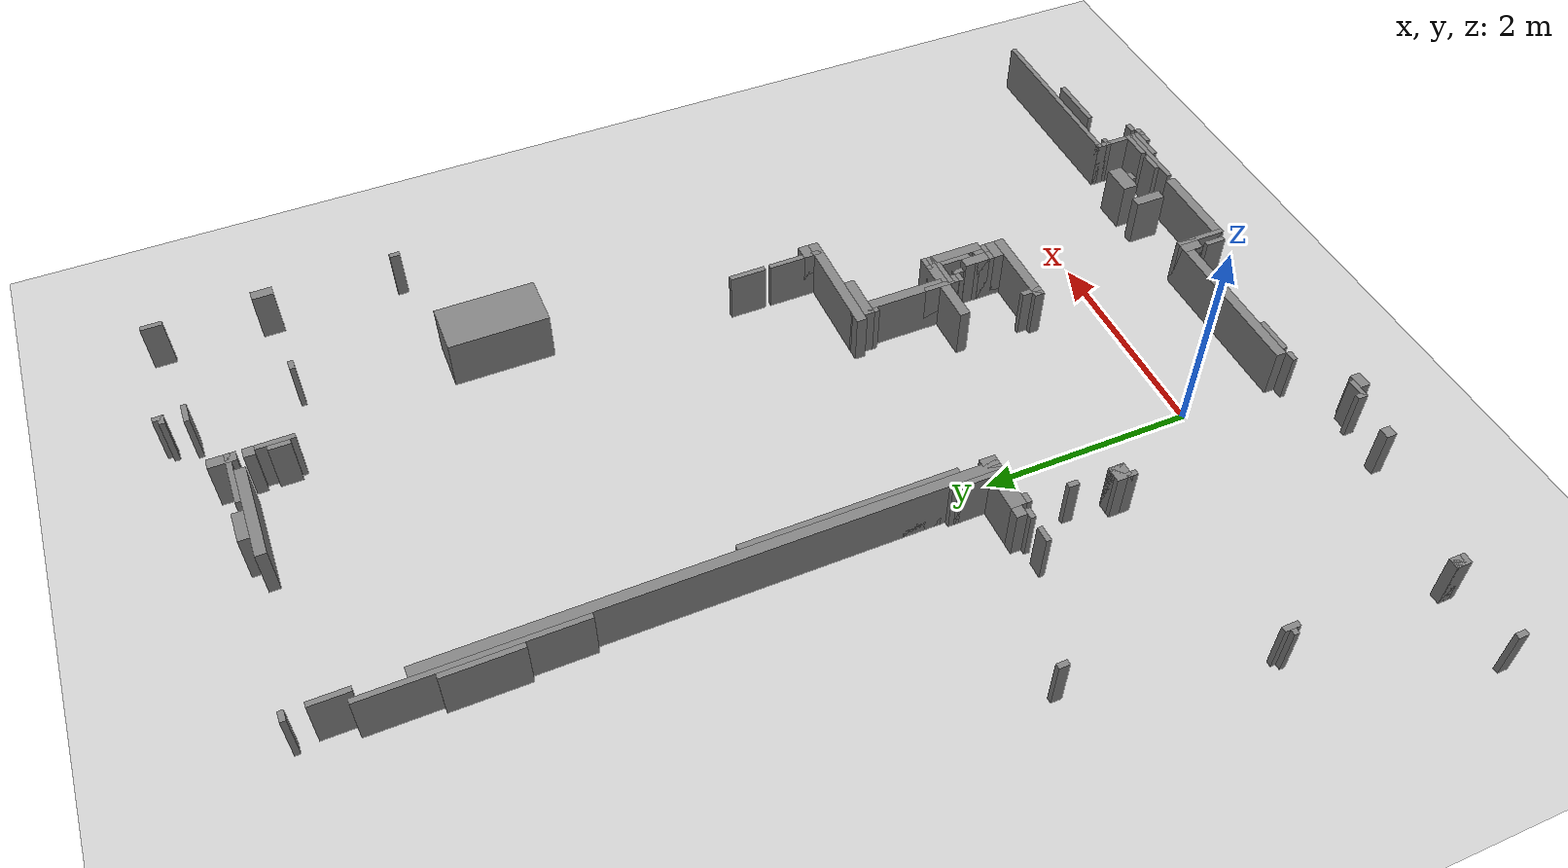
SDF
<sdf version="1.6">
 <world name="2F_world">
  <include><uri>model://ground_plane</uri></include>
  <include><uri>model://sun</uri></include>
  <model name="wall_0">
   <static>true</static>
   <pose>3.1 8.385 0.25 0 0 0</pose>
   <link name="link">
    <collision name="collision"><geometry><box><size>0.1 0.05 0.5</size></box></geometry></collision>
    <visual name="visual">
     <geometry><box><size>0.1 0.05 0.5</size></box></geometry>
     <material><ambient>0.5 0.5 0.5 1</ambient></material>
    </visual>
   </link>
  </model>
  <model name="wall_6">
   <static>true</static>
   <pose>3.1 8.185 0.25 0 0 0</pose>
   <link name="link">
    <collision name="collision"><geometry><box><size>0.2 0.05 0.5</size></box></geometry></collision>
    <visual name="visual">
     <geometry><box><size>0.2 0.05 0.5</size></box></geometry>
     <material><ambient>0.5 0.5 0.5 1</ambient></material>
    </visual>
   </link>
  </model>
  <model name="wall_7">
   <static>true</static>
   <pose>-0.15 7.985 0.25 0 0 0</pose>
   <link name="link">
    <collision name="collision"><geometry><box><size>0.1 0.05 0.5</size></box></geometry></collision>
    <visual name="visual">
     <geometry><box><size>0.1 0.05 0.5</size></box></geometry>
     <material><ambient>0.5 0.5 0.5 1</ambient></material>
    </visual>
   </link>
  </model>
  <model name="wall_9">
   <static>true</static>
   <pose>1.7 7.96 0.25 0 0 0</pose>
   <link name="link">
    <collision name="collision"><geometry><box><size>0.3 0.1 0.5</size></box></geometry></collision>
    <visual name="visual">
     <geometry><box><size>0.3 0.1 0.5</size></box></geometry>
     <material><ambient>0.5 0.5 0.5 1</ambient></material>
    </visual>
   </link>
  </model>
  <model name="wall_10">
   <static>true</static>
   <pose>2.225 7.935 0.25 0 0 0</pose>
   <link name="link">
    <collision name="collision"><geometry><box><size>0.55 0.05 0.5</size></box></geometry></collision>
    <visual name="visual">
     <geometry><box><size>0.55 0.05 0.5</size></box></geometry>
     <material><ambient>0.5 0.5 0.5 1</ambient></material>
    </visual>
   </link>
  </model>
  <model name="wall_12">
   <static>true</static>
   <pose>1.825 7.86 0.25 0 0 0</pose>
   <link name="link">
    <collision name="collision"><geometry><box><size>0.95 0.1 0.5</size></box></geometry></collision>
    <visual name="visual">
     <geometry><box><size>0.95 0.1 0.5</size></box></geometry>
     <material><ambient>0.5 0.5 0.5 1</ambient></material>
    </visual>
   </link>
  </model>
  <model name="wall_15">
   <static>true</static>
   <pose>2.45 7.76 0.25 0 0 0</pose>
   <link name="link">
    <collision name="collision"><geometry><box><size>0.1 0.1 0.5</size></box></geometry></collision>
    <visual name="visual">
     <geometry><box><size>0.1 0.1 0.5</size></box></geometry>
     <material><ambient>0.5 0.5 0.5 1</ambient></material>
    </visual>
   </link>
  </model>
  <model name="wall_26">
   <static>true</static>
   <pose>3.3 7.235 0.25 0 0 0</pose>
   <link name="link">
    <collision name="collision"><geometry><box><size>0.1 0.05 0.5</size></box></geometry></collision>
    <visual name="visual">
     <geometry><box><size>0.1 0.05 0.5</size></box></geometry>
     <material><ambient>0.5 0.5 0.5 1</ambient></material>
    </visual>
   </link>
  </model>
  <model name="wall_46">
   <static>true</static>
   <pose>2.825 2.46 0.25 0 0 0</pose>
   <link name="link">
    <collision name="collision"><geometry><box><size>0.15 0.1 0.5</size></box></geometry></collision>
    <visual name="visual">
     <geometry><box><size>0.15 0.1 0.5</size></box></geometry>
     <material><ambient>0.5 0.5 0.5 1</ambient></material>
    </visual>
   </link>
  </model>
  <model name="wall_48">
   <static>true</static>
   <pose>2.35 2.36 0.25 0 0 0</pose>
   <link name="link">
    <collision name="collision"><geometry><box><size>1.1 0.1 0.5</size></box></geometry></collision>
    <visual name="visual">
     <geometry><box><size>1.1 0.1 0.5</size></box></geometry>
     <material><ambient>0.5 0.5 0.5 1</ambient></material>
    </visual>
   </link>
  </model>
  <model name="wall_49">
   <static>true</static>
   <pose>2.075 2.26 0.25 0 0 0</pose>
   <link name="link">
    <collision name="collision"><geometry><box><size>0.45 0.1 0.5</size></box></geometry></collision>
    <visual name="visual">
     <geometry><box><size>0.45 0.1 0.5</size></box></geometry>
     <material><ambient>0.5 0.5 0.5 1</ambient></material>
    </visual>
   </link>
  </model>
  <model name="wall_50">
   <static>true</static>
   <pose>-0.65 2.11 0.25 0 0 0</pose>
   <link name="link">
    <collision name="collision"><geometry><box><size>0.1 0.1 0.5</size></box></geometry></collision>
    <visual name="visual">
     <geometry><box><size>0.1 0.1 0.5</size></box></geometry>
     <material><ambient>0.5 0.5 0.5 1</ambient></material>
    </visual>
   </link>
  </model>
  <model name="wall_51">
   <static>true</static>
   <pose>-0.925 2.035 0.25 0 0 0</pose>
   <link name="link">
    <collision name="collision"><geometry><box><size>0.15 0.05 0.5</size></box></geometry></collision>
    <visual name="visual">
     <geometry><box><size>0.15 0.05 0.5</size></box></geometry>
     <material><ambient>0.5 0.5 0.5 1</ambient></material>
    </visual>
   </link>
  </model>
  <model name="wall_52">
   <static>true</static>
   <pose>-0.7 2.035 0.25 0 0 0</pose>
   <link name="link">
    <collision name="collision"><geometry><box><size>0.1 0.05 0.5</size></box></geometry></collision>
    <visual name="visual">
     <geometry><box><size>0.1 0.05 0.5</size></box></geometry>
     <material><ambient>0.5 0.5 0.5 1</ambient></material>
    </visual>
   </link>
  </model>
  <model name="wall_53">
   <static>true</static>
   <pose>-0.325 2.085 0.25 0 0 0</pose>
   <link name="link">
    <collision name="collision"><geometry><box><size>0.55 0.15 0.5</size></box></geometry></collision>
    <visual name="visual">
     <geometry><box><size>0.55 0.15 0.5</size></box></geometry>
     <material><ambient>0.5 0.5 0.5 1</ambient></material>
    </visual>
   </link>
  </model>
  <model name="wall_54">
   <static>true</static>
   <pose>-0.55 1.985 0.25 0 0 0</pose>
   <link name="link">
    <collision name="collision"><geometry><box><size>0.1 0.05 0.5</size></box></geometry></collision>
    <visual name="visual">
     <geometry><box><size>0.1 0.05 0.5</size></box></geometry>
     <material><ambient>0.5 0.5 0.5 1</ambient></material>
    </visual>
   </link>
  </model>
  <model name="wall_55">
   <static>true</static>
   <pose>1.9 1.46 0.25 0 0 0</pose>
   <link name="link">
    <collision name="collision"><geometry><box><size>0.8 0.1 0.5</size></box></geometry></collision>
    <visual name="visual">
     <geometry><box><size>0.8 0.1 0.5</size></box></geometry>
     <material><ambient>0.5 0.5 0.5 1</ambient></material>
    </visual>
   </link>
  </model>
  <model name="wall_56">
   <static>true</static>
   <pose>2.1 1.385 0.25 0 0 0</pose>
   <link name="link">
    <collision name="collision"><geometry><box><size>0.4 0.05 0.5</size></box></geometry></collision>
    <visual name="visual">
     <geometry><box><size>0.4 0.05 0.5</size></box></geometry>
     <material><ambient>0.5 0.5 0.5 1</ambient></material>
    </visual>
   </link>
  </model>
  <model name="wall_57">
   <static>true</static>
   <pose>1.95 1.335 0.25 0 0 0</pose>
   <link name="link">
    <collision name="collision"><geometry><box><size>0.1 0.05 0.5</size></box></geometry></collision>
    <visual name="visual">
     <geometry><box><size>0.1 0.05 0.5</size></box></geometry>
     <material><ambient>0.5 0.5 0.5 1</ambient></material>
    </visual>
   </link>
  </model>
  <model name="wall_58">
   <static>true</static>
   <pose>2.0 1.285 0.25 0 0 0</pose>
   <link name="link">
    <collision name="collision"><geometry><box><size>0.1 0.05 0.5</size></box></geometry></collision>
    <visual name="visual">
     <geometry><box><size>0.1 0.05 0.5</size></box></geometry>
     <material><ambient>0.5 0.5 0.5 1</ambient></material>
    </visual>
   </link>
  </model>
  <model name="wall_60">
   <static>true</static>
   <pose>-0.625 1.135 0.25 0 0 0</pose>
   <link name="link">
    <collision name="collision"><geometry><box><size>0.15 0.15 0.5</size></box></geometry></collision>
    <visual name="visual">
     <geometry><box><size>0.15 0.15 0.5</size></box></geometry>
     <material><ambient>0.5 0.5 0.5 1</ambient></material>
    </visual>
   </link>
  </model>
  <model name="wall_61">
   <static>true</static>
   <pose>2.1 1.035 0.25 0 0 0</pose>
   <link name="link">
    <collision name="collision"><geometry><box><size>0.1 0.05 0.5</size></box></geometry></collision>
    <visual name="visual">
     <geometry><box><size>0.1 0.05 0.5</size></box></geometry>
     <material><ambient>0.5 0.5 0.5 1</ambient></material>
    </visual>
   </link>
  </model>
  <model name="wall_62">
   <static>true</static>
   <pose>2.25 1.035 0.25 0 0 0</pose>
   <link name="link">
    <collision name="collision"><geometry><box><size>0.1 0.05 0.5</size></box></geometry></collision>
    <visual name="visual">
     <geometry><box><size>0.1 0.05 0.5</size></box></geometry>
     <material><ambient>0.5 0.5 0.5 1</ambient></material>
    </visual>
   </link>
  </model>
  <model name="wall_63">
   <static>true</static>
   <pose>2.175 0.96 0.25 0 0 0</pose>
   <link name="link">
    <collision name="collision"><geometry><box><size>0.25 0.1 0.5</size></box></geometry></collision>
    <visual name="visual">
     <geometry><box><size>0.25 0.1 0.5</size></box></geometry>
     <material><ambient>0.5 0.5 0.5 1</ambient></material>
    </visual>
   </link>
  </model>
  <model name="wall_64">
   <static>true</static>
   <pose>2.2 0.885 0.25 0 0 0</pose>
   <link name="link">
    <collision name="collision"><geometry><box><size>0.1 0.05 0.5</size></box></geometry></collision>
    <visual name="visual">
     <geometry><box><size>0.1 0.05 0.5</size></box></geometry>
     <material><ambient>0.5 0.5 0.5 1</ambient></material>
    </visual>
   </link>
  </model>
  <model name="wall_65">
   <static>true</static>
   <pose>2.15 0.81 0.25 0 0 0</pose>
   <link name="link">
    <collision name="collision"><geometry><box><size>0.2 0.1 0.5</size></box></geometry></collision>
    <visual name="visual">
     <geometry><box><size>0.2 0.1 0.5</size></box></geometry>
     <material><ambient>0.5 0.5 0.5 1</ambient></material>
    </visual>
   </link>
  </model>
  <model name="wall_66">
   <static>true</static>
   <pose>-2.45 0.735 0.25 0 0 0</pose>
   <link name="link">
    <collision name="collision"><geometry><box><size>0.1 0.05 0.5</size></box></geometry></collision>
    <visual name="visual">
     <geometry><box><size>0.1 0.05 0.5</size></box></geometry>
     <material><ambient>0.5 0.5 0.5 1</ambient></material>
    </visual>
   </link>
  </model>
  <model name="wall_67">
   <static>true</static>
   <pose>1.85 0.71 0.25 0 0 0</pose>
   <link name="link">
    <collision name="collision"><geometry><box><size>0.8 0.1 0.5</size></box></geometry></collision>
    <visual name="visual">
     <geometry><box><size>0.8 0.1 0.5</size></box></geometry>
     <material><ambient>0.5 0.5 0.5 1</ambient></material>
    </visual>
   </link>
  </model>
  <model name="wall_71">
   <static>true</static>
   <pose>-2.45 -0.84 0.25 0 0 0</pose>
   <link name="link">
    <collision name="collision"><geometry><box><size>0.1 0.1 0.5</size></box></geometry></collision>
    <visual name="visual">
     <geometry><box><size>0.1 0.1 0.5</size></box></geometry>
     <material><ambient>0.5 0.5 0.5 1</ambient></material>
    </visual>
   </link>
  </model>
  <model name="wall_72">
   <static>true</static>
   <pose>0.75 -0.89 0.25 0 0 0</pose>
   <link name="link">
    <collision name="collision"><geometry><box><size>1.6 0.1 0.5</size></box></geometry></collision>
    <visual name="visual">
     <geometry><box><size>1.6 0.1 0.5</size></box></geometry>
     <material><ambient>0.5 0.5 0.5 1</ambient></material>
    </visual>
   </link>
  </model>
  <model name="wall_73">
   <static>true</static>
   <pose>2.55 -0.865 0.25 0 0 0</pose>
   <link name="link">
    <collision name="collision"><geometry><box><size>0.3 0.15 0.5</size></box></geometry></collision>
    <visual name="visual">
     <geometry><box><size>0.3 0.15 0.5</size></box></geometry>
     <material><ambient>0.5 0.5 0.5 1</ambient></material>
    </visual>
   </link>
  </model>
  <model name="wall_74">
   <static>true</static>
   <pose>3.95 -0.915 0.25 0 0 0</pose>
   <link name="link">
    <collision name="collision"><geometry><box><size>1.8 0.05 0.5</size></box></geometry></collision>
    <visual name="visual">
     <geometry><box><size>1.8 0.05 0.5</size></box></geometry>
     <material><ambient>0.5 0.5 0.5 1</ambient></material>
    </visual>
   </link>
  </model>
  <model name="wall_76">
   <static>true</static>
   <pose>-0.1 -0.965 0.25 0 0 0</pose>
   <link name="link">
    <collision name="collision"><geometry><box><size>0.1 0.05 0.5</size></box></geometry></collision>
    <visual name="visual">
     <geometry><box><size>0.1 0.05 0.5</size></box></geometry>
     <material><ambient>0.5 0.5 0.5 1</ambient></material>
    </visual>
   </link>
  </model>
  <model name="wall_77">
   <static>true</static>
   <pose>0.175 -0.965 0.25 0 0 0</pose>
   <link name="link">
    <collision name="collision"><geometry><box><size>0.35 0.05 0.5</size></box></geometry></collision>
    <visual name="visual">
     <geometry><box><size>0.35 0.05 0.5</size></box></geometry>
     <material><ambient>0.5 0.5 0.5 1</ambient></material>
    </visual>
   </link>
  </model>
  <model name="wall_78">
   <static>true</static>
   <pose>2.55 -0.965 0.25 0 0 0</pose>
   <link name="link">
    <collision name="collision"><geometry><box><size>0.1 0.05 0.5</size></box></geometry></collision>
    <visual name="visual">
     <geometry><box><size>0.1 0.05 0.5</size></box></geometry>
     <material><ambient>0.5 0.5 0.5 1</ambient></material>
    </visual>
   </link>
  </model>
  <model name="wall_79">
   <static>true</static>
   <pose>1.475 -0.99 0.25 0 0 0</pose>
   <link name="link">
    <collision name="collision"><geometry><box><size>0.15 0.1 0.5</size></box></geometry></collision>
    <visual name="visual">
     <geometry><box><size>0.15 0.1 0.5</size></box></geometry>
     <material><ambient>0.5 0.5 0.5 1</ambient></material>
    </visual>
   </link>
  </model>
  <model name="wall_80">
   <static>true</static>
   <pose>3.1 -1.015 0.25 0 0 0</pose>
   <link name="link">
    <collision name="collision"><geometry><box><size>0.1 0.05 0.5</size></box></geometry></collision>
    <visual name="visual">
     <geometry><box><size>0.1 0.05 0.5</size></box></geometry>
     <material><ambient>0.5 0.5 0.5 1</ambient></material>
    </visual>
   </link>
  </model>
  <model name="wall_82">
   <static>true</static>
   <pose>3.775 -1.065 0.25 0 0 0</pose>
   <link name="link">
    <collision name="collision"><geometry><box><size>0.55 0.05 0.5</size></box></geometry></collision>
    <visual name="visual">
     <geometry><box><size>0.55 0.05 0.5</size></box></geometry>
     <material><ambient>0.5 0.5 0.5 1</ambient></material>
    </visual>
   </link>
  </model>
  <model name="wall_89">
   <static>true</static>
   <pose>-1.15 -1.19 0.25 0 0 0</pose>
   <link name="link">
    <collision name="collision"><geometry><box><size>0.1 0.1 0.5</size></box></geometry></collision>
    <visual name="visual">
     <geometry><box><size>0.1 0.1 0.5</size></box></geometry>
     <material><ambient>0.5 0.5 0.5 1</ambient></material>
    </visual>
   </link>
  </model>
  <model name="wall_90">
   <static>true</static>
   <pose>-0.65 -1.265 0.25 0 0 0</pose>
   <link name="link">
    <collision name="collision"><geometry><box><size>0.2 0.05 0.5</size></box></geometry></collision>
    <visual name="visual">
     <geometry><box><size>0.2 0.05 0.5</size></box></geometry>
     <material><ambient>0.5 0.5 0.5 1</ambient></material>
    </visual>
   </link>
  </model>
  <model name="wall_91">
   <static>true</static>
   <pose>2.65 -1.265 0.25 0 0 0</pose>
   <link name="link">
    <collision name="collision"><geometry><box><size>0.2 0.05 0.5</size></box></geometry></collision>
    <visual name="visual">
     <geometry><box><size>0.2 0.05 0.5</size></box></geometry>
     <material><ambient>0.5 0.5 0.5 1</ambient></material>
    </visual>
   </link>
  </model>
  <model name="wall_92">
   <static>true</static>
   <pose>2.95 -1.265 0.25 0 0 0</pose>
   <link name="link">
    <collision name="collision"><geometry><box><size>0.3 0.05 0.5</size></box></geometry></collision>
    <visual name="visual">
     <geometry><box><size>0.3 0.05 0.5</size></box></geometry>
     <material><ambient>0.5 0.5 0.5 1</ambient></material>
    </visual>
   </link>
  </model>
  <model name="wall_94">
   <static>true</static>
   <pose>1.925 -1.29 0.25 0 0 0</pose>
   <link name="link">
    <collision name="collision"><geometry><box><size>0.85 0.1 0.5</size></box></geometry></collision>
    <visual name="visual">
     <geometry><box><size>0.85 0.1 0.5</size></box></geometry>
     <material><ambient>0.5 0.5 0.5 1</ambient></material>
    </visual>
   </link>
  </model>
  <model name="wall_95">
   <static>true</static>
   <pose>2.75 -1.315 0.25 0 0 0</pose>
   <link name="link">
    <collision name="collision"><geometry><box><size>0.7 0.05 0.5</size></box></geometry></collision>
    <visual name="visual">
     <geometry><box><size>0.7 0.05 0.5</size></box></geometry>
     <material><ambient>0.5 0.5 0.5 1</ambient></material>
    </visual>
   </link>
  </model>
  <model name="wall_96">
   <static>true</static>
   <pose>-0.575 -1.34 0.25 0 0 0</pose>
   <link name="link">
    <collision name="collision"><geometry><box><size>0.15 0.1 0.5</size></box></geometry></collision>
    <visual name="visual">
     <geometry><box><size>0.15 0.1 0.5</size></box></geometry>
     <material><ambient>0.5 0.5 0.5 1</ambient></material>
    </visual>
   </link>
  </model>
  <model name="wall_97">
   <static>true</static>
   <pose>2.925 -1.365 0.25 0 0 0</pose>
   <link name="link">
    <collision name="collision"><geometry><box><size>0.35 0.05 0.5</size></box></geometry></collision>
    <visual name="visual">
     <geometry><box><size>0.35 0.05 0.5</size></box></geometry>
     <material><ambient>0.5 0.5 0.5 1</ambient></material>
    </visual>
   </link>
  </model>
  <model name="wall_98">
   <static>true</static>
   <pose>3.2 -1.365 0.25 0 0 0</pose>
   <link name="link">
    <collision name="collision"><geometry><box><size>0.1 0.05 0.5</size></box></geometry></collision>
    <visual name="visual">
     <geometry><box><size>0.1 0.05 0.5</size></box></geometry>
     <material><ambient>0.5 0.5 0.5 1</ambient></material>
    </visual>
   </link>
  </model>
  <model name="wall_99">
   <static>true</static>
   <pose>3.05 -1.415 0.25 0 0 0</pose>
   <link name="link">
    <collision name="collision"><geometry><box><size>0.2 0.05 0.5</size></box></geometry></collision>
    <visual name="visual">
     <geometry><box><size>0.2 0.05 0.5</size></box></geometry>
     <material><ambient>0.5 0.5 0.5 1</ambient></material>
    </visual>
   </link>
  </model>
  <model name="wall_105">
   <static>true</static>
   <pose>-3.175 -0.84 0.25 0 0 0</pose>
   <link name="link">
    <collision name="collision"><geometry><box><size>0.05 0.1 0.5</size></box></geometry></collision>
    <visual name="visual">
     <geometry><box><size>0.05 0.1 0.5</size></box></geometry>
     <material><ambient>0.5 0.5 0.5 1</ambient></material>
    </visual>
   </link>
  </model>
  <model name="wall_106">
   <static>true</static>
   <pose>-2.425 0.735 0.25 0 0 0</pose>
   <link name="link">
    <collision name="collision"><geometry><box><size>0.05 0.15 0.5</size></box></geometry></collision>
    <visual name="visual">
     <geometry><box><size>0.05 0.15 0.5</size></box></geometry>
     <material><ambient>0.5 0.5 0.5 1</ambient></material>
    </visual>
   </link>
  </model>
  <model name="wall_107">
   <static>true</static>
   <pose>-2.45 -0.865 0.25 0 0 0</pose>
   <link name="link">
    <collision name="collision"><geometry><box><size>0.1 0.15 0.5</size></box></geometry></collision>
    <visual name="visual">
     <geometry><box><size>0.1 0.15 0.5</size></box></geometry>
     <material><ambient>0.5 0.5 0.5 1</ambient></material>
    </visual>
   </link>
  </model>
  <model name="wall_108">
   <static>true</static>
   <pose>-2.025 2.51 0.25 0 0 0</pose>
   <link name="link">
    <collision name="collision"><geometry><box><size>0.05 0.1 0.5</size></box></geometry></collision>
    <visual name="visual">
     <geometry><box><size>0.05 0.1 0.5</size></box></geometry>
     <material><ambient>0.5 0.5 0.5 1</ambient></material>
    </visual>
   </link>
  </model>
  <model name="wall_109">
   <static>true</static>
   <pose>-0.725 -1.24 0.25 0 0 0</pose>
   <link name="link">
    <collision name="collision"><geometry><box><size>0.05 0.1 0.5</size></box></geometry></collision>
    <visual name="visual">
     <geometry><box><size>0.05 0.1 0.5</size></box></geometry>
     <material><ambient>0.5 0.5 0.5 1</ambient></material>
    </visual>
   </link>
  </model>
  <model name="wall_110">
   <static>true</static>
   <pose>-0.675 1.06 0.25 0 0 0</pose>
   <link name="link">
    <collision name="collision"><geometry><box><size>0.05 0.1 0.5</size></box></geometry></collision>
    <visual name="visual">
     <geometry><box><size>0.05 0.1 0.5</size></box></geometry>
     <material><ambient>0.5 0.5 0.5 1</ambient></material>
    </visual>
   </link>
  </model>
  <model name="wall_111">
   <static>true</static>
   <pose>-0.575 1.56 0.25 0 0 0</pose>
   <link name="link">
    <collision name="collision"><geometry><box><size>0.05 0.1 0.5</size></box></geometry></collision>
    <visual name="visual">
     <geometry><box><size>0.05 0.1 0.5</size></box></geometry>
     <material><ambient>0.5 0.5 0.5 1</ambient></material>
    </visual>
   </link>
  </model>
  <model name="wall_112">
   <static>true</static>
   <pose>-0.6 1.135 0.25 0 0 0</pose>
   <link name="link">
    <collision name="collision"><geometry><box><size>0.1 0.15 0.5</size></box></geometry></collision>
    <visual name="visual">
     <geometry><box><size>0.1 0.15 0.5</size></box></geometry>
     <material><ambient>0.5 0.5 0.5 1</ambient></material>
    </visual>
   </link>
  </model>
  <model name="wall_113">
   <static>true</static>
   <pose>-0.275 6.51 0.25 0 0 0</pose>
   <link name="link">
    <collision name="collision"><geometry><box><size>0.05 0.7 0.5</size></box></geometry></collision>
    <visual name="visual">
     <geometry><box><size>0.05 0.7 0.5</size></box></geometry>
     <material><ambient>0.5 0.5 0.5 1</ambient></material>
    </visual>
   </link>
  </model>
  <model name="wall_114">
   <static>true</static>
   <pose>-0.225 6.56 0.25 0 0 0</pose>
   <link name="link">
    <collision name="collision"><geometry><box><size>0.05 1.9 0.5</size></box></geometry></collision>
    <visual name="visual">
     <geometry><box><size>0.05 1.9 0.5</size></box></geometry>
     <material><ambient>0.5 0.5 0.5 1</ambient></material>
    </visual>
   </link>
  </model>
  <model name="wall_115">
   <static>true</static>
   <pose>-0.225 2.46 0.25 0 0 0</pose>
   <link name="link">
    <collision name="collision"><geometry><box><size>0.05 0.1 0.5</size></box></geometry></collision>
    <visual name="visual">
     <geometry><box><size>0.05 0.1 0.5</size></box></geometry>
     <material><ambient>0.5 0.5 0.5 1</ambient></material>
    </visual>
   </link>
  </model>
  <model name="wall_116">
   <static>true</static>
   <pose>-0.175 2.81 0.25 0 0 0</pose>
   <link name="link">
    <collision name="collision"><geometry><box><size>0.05 0.2 0.5</size></box></geometry></collision>
    <visual name="visual">
     <geometry><box><size>0.05 0.2 0.5</size></box></geometry>
     <material><ambient>0.5 0.5 0.5 1</ambient></material>
    </visual>
   </link>
  </model>
  <model name="wall_117">
   <static>true</static>
   <pose>-0.175 2.61 0.25 0 0 0</pose>
   <link name="link">
    <collision name="collision"><geometry><box><size>0.05 0.1 0.5</size></box></geometry></collision>
    <visual name="visual">
     <geometry><box><size>0.05 0.1 0.5</size></box></geometry>
     <material><ambient>0.5 0.5 0.5 1</ambient></material>
    </visual>
   </link>
  </model>
  <model name="wall_118">
   <static>true</static>
   <pose>-0.2 2.235 0.25 0 0 0</pose>
   <link name="link">
    <collision name="collision"><geometry><box><size>0.1 0.45 0.5</size></box></geometry></collision>
    <visual name="visual">
     <geometry><box><size>0.1 0.45 0.5</size></box></geometry>
     <material><ambient>0.5 0.5 0.5 1</ambient></material>
    </visual>
   </link>
  </model>
  <model name="wall_119">
   <static>true</static>
   <pose>-0.125 7.635 0.25 0 0 0</pose>
   <link name="link">
    <collision name="collision"><geometry><box><size>0.05 0.35 0.5</size></box></geometry></collision>
    <visual name="visual">
     <geometry><box><size>0.05 0.35 0.5</size></box></geometry>
     <material><ambient>0.5 0.5 0.5 1</ambient></material>
    </visual>
   </link>
  </model>
  <model name="wall_120">
   <static>true</static>
   <pose>-0.15 4.535 0.25 0 0 0</pose>
   <link name="link">
    <collision name="collision"><geometry><box><size>0.1 5.05 0.5</size></box></geometry></collision>
    <visual name="visual">
     <geometry><box><size>0.1 5.05 0.5</size></box></geometry>
     <material><ambient>0.5 0.5 0.5 1</ambient></material>
    </visual>
   </link>
  </model>
  <model name="wall_121">
   <static>true</static>
   <pose>-0.075 3.36 0.25 0 0 0</pose>
   <link name="link">
    <collision name="collision"><geometry><box><size>0.05 2.0 0.5</size></box></geometry></collision>
    <visual name="visual">
     <geometry><box><size>0.05 2.0 0.5</size></box></geometry>
     <material><ambient>0.5 0.5 0.5 1</ambient></material>
    </visual>
   </link>
  </model>
  <model name="wall_122">
   <static>true</static>
   <pose>1.425 -1.19 0.25 0 0 0</pose>
   <link name="link">
    <collision name="collision"><geometry><box><size>0.05 0.2 0.5</size></box></geometry></collision>
    <visual name="visual">
     <geometry><box><size>0.05 0.2 0.5</size></box></geometry>
     <material><ambient>0.5 0.5 0.5 1</ambient></material>
    </visual>
   </link>
  </model>
  <model name="wall_123">
   <static>true</static>
   <pose>1.475 0.71 0.25 0 0 0</pose>
   <link name="link">
    <collision name="collision"><geometry><box><size>0.05 0.1 0.5</size></box></geometry></collision>
    <visual name="visual">
     <geometry><box><size>0.05 0.1 0.5</size></box></geometry>
     <material><ambient>0.5 0.5 0.5 1</ambient></material>
    </visual>
   </link>
  </model>
  <model name="wall_124">
   <static>true</static>
   <pose>1.45 -0.94 0.25 0 0 0</pose>
   <link name="link">
    <collision name="collision"><geometry><box><size>0.1 0.2 0.5</size></box></geometry></collision>
    <visual name="visual">
     <geometry><box><size>0.1 0.2 0.5</size></box></geometry>
     <material><ambient>0.5 0.5 0.5 1</ambient></material>
    </visual>
   </link>
  </model>
  <model name="wall_125">
   <static>true</static>
   <pose>1.525 0.76 0.25 0 0 0</pose>
   <link name="link">
    <collision name="collision"><geometry><box><size>0.05 0.2 0.5</size></box></geometry></collision>
    <visual name="visual">
     <geometry><box><size>0.05 0.2 0.5</size></box></geometry>
     <material><ambient>0.5 0.5 0.5 1</ambient></material>
    </visual>
   </link>
  </model>
  <model name="wall_126">
   <static>true</static>
   <pose>1.525 -1.09 0.25 0 0 0</pose>
   <link name="link">
    <collision name="collision"><geometry><box><size>0.05 0.5 0.5</size></box></geometry></collision>
    <visual name="visual">
     <geometry><box><size>0.05 0.5 0.5</size></box></geometry>
     <material><ambient>0.5 0.5 0.5 1</ambient></material>
    </visual>
   </link>
  </model>
  <model name="wall_127">
   <static>true</static>
   <pose>1.875 2.21 0.25 0 0 0</pose>
   <link name="link">
    <collision name="collision"><geometry><box><size>0.05 0.1 0.5</size></box></geometry></collision>
    <visual name="visual">
     <geometry><box><size>0.05 0.1 0.5</size></box></geometry>
     <material><ambient>0.5 0.5 0.5 1</ambient></material>
    </visual>
   </link>
  </model>
  <model name="wall_128">
   <static>true</static>
   <pose>1.925 1.485 0.25 0 0 0</pose>
   <link name="link">
    <collision name="collision"><geometry><box><size>0.05 0.35 0.5</size></box></geometry></collision>
    <visual name="visual">
     <geometry><box><size>0.05 0.35 0.5</size></box></geometry>
     <material><ambient>0.5 0.5 0.5 1</ambient></material>
    </visual>
   </link>
  </model>
  <model name="wall_129">
   <static>true</static>
   <pose>1.95 1.835 0.25 0 0 0</pose>
   <link name="link">
    <collision name="collision"><geometry><box><size>0.1 1.15 0.5</size></box></geometry></collision>
    <visual name="visual">
     <geometry><box><size>0.1 1.15 0.5</size></box></geometry>
     <material><ambient>0.5 0.5 0.5 1</ambient></material>
    </visual>
   </link>
  </model>
  <model name="wall_130">
   <static>true</static>
   <pose>2.025 1.26 0.25 0 0 0</pose>
   <link name="link">
    <collision name="collision"><geometry><box><size>0.05 0.1 0.5</size></box></geometry></collision>
    <visual name="visual">
     <geometry><box><size>0.05 0.1 0.5</size></box></geometry>
     <material><ambient>0.5 0.5 0.5 1</ambient></material>
    </visual>
   </link>
  </model>
  <model name="wall_131">
   <static>true</static>
   <pose>2.1 1.035 0.25 0 0 0</pose>
   <link name="link">
    <collision name="collision"><geometry><box><size>0.1 0.25 0.5</size></box></geometry></collision>
    <visual name="visual">
     <geometry><box><size>0.1 0.25 0.5</size></box></geometry>
     <material><ambient>0.5 0.5 0.5 1</ambient></material>
    </visual>
   </link>
  </model>
  <model name="wall_132">
   <static>true</static>
   <pose>2.175 1.285 0.25 0 0 0</pose>
   <link name="link">
    <collision name="collision"><geometry><box><size>0.05 0.45 0.5</size></box></geometry></collision>
    <visual name="visual">
     <geometry><box><size>0.05 0.45 0.5</size></box></geometry>
     <material><ambient>0.5 0.5 0.5 1</ambient></material>
    </visual>
   </link>
  </model>
  <model name="wall_133">
   <static>true</static>
   <pose>2.125 0.835 0.25 0 0 0</pose>
   <link name="link">
    <collision name="collision"><geometry><box><size>0.15 0.35 0.5</size></box></geometry></collision>
    <visual name="visual">
     <geometry><box><size>0.15 0.35 0.5</size></box></geometry>
     <material><ambient>0.5 0.5 0.5 1</ambient></material>
    </visual>
   </link>
  </model>
  <model name="wall_134">
   <static>true</static>
   <pose>2.2 -0.94 0.25 0 0 0</pose>
   <link name="link">
    <collision name="collision"><geometry><box><size>0.1 0.3 0.5</size></box></geometry></collision>
    <visual name="visual">
     <geometry><box><size>0.1 0.3 0.5</size></box></geometry>
     <material><ambient>0.5 0.5 0.5 1</ambient></material>
    </visual>
   </link>
  </model>
  <model name="wall_135">
   <static>true</static>
   <pose>2.25 1.185 0.25 0 0 0</pose>
   <link name="link">
    <collision name="collision"><geometry><box><size>0.1 0.55 0.5</size></box></geometry></collision>
    <visual name="visual">
     <geometry><box><size>0.1 0.55 0.5</size></box></geometry>
     <material><ambient>0.5 0.5 0.5 1</ambient></material>
    </visual>
   </link>
  </model>
  <model name="wall_136">
   <static>true</static>
   <pose>2.425 7.51 0.25 0 0 0</pose>
   <link name="link">
    <collision name="collision"><geometry><box><size>0.05 0.2 0.5</size></box></geometry></collision>
    <visual name="visual">
     <geometry><box><size>0.05 0.2 0.5</size></box></geometry>
     <material><ambient>0.5 0.5 0.5 1</ambient></material>
    </visual>
   </link>
  </model>
  <model name="wall_137">
   <static>true</static>
   <pose>2.45 7.985 0.25 0 0 0</pose>
   <link name="link">
    <collision name="collision"><geometry><box><size>0.1 0.25 0.5</size></box></geometry></collision>
    <visual name="visual">
     <geometry><box><size>0.1 0.25 0.5</size></box></geometry>
     <material><ambient>0.5 0.5 0.5 1</ambient></material>
    </visual>
   </link>
  </model>
  <model name="wall_138">
   <static>true</static>
   <pose>2.475 7.585 0.25 0 0 0</pose>
   <link name="link">
    <collision name="collision"><geometry><box><size>0.05 0.45 0.5</size></box></geometry></collision>
    <visual name="visual">
     <geometry><box><size>0.05 0.45 0.5</size></box></geometry>
     <material><ambient>0.5 0.5 0.5 1</ambient></material>
    </visual>
   </link>
  </model>
  <model name="wall_139">
   <static>true</static>
   <pose>2.775 3.085 0.25 0 0 0</pose>
   <link name="link">
    <collision name="collision"><geometry><box><size>0.05 0.35 0.5</size></box></geometry></collision>
    <visual name="visual">
     <geometry><box><size>0.05 0.35 0.5</size></box></geometry>
     <material><ambient>0.5 0.5 0.5 1</ambient></material>
    </visual>
   </link>
  </model>
  <model name="wall_140">
   <static>true</static>
   <pose>2.775 2.585 0.25 0 0 0</pose>
   <link name="link">
    <collision name="collision"><geometry><box><size>0.05 0.55 0.5</size></box></geometry></collision>
    <visual name="visual">
     <geometry><box><size>0.05 0.55 0.5</size></box></geometry>
     <material><ambient>0.5 0.5 0.5 1</ambient></material>
    </visual>
   </link>
  </model>
  <model name="wall_141">
   <static>true</static>
   <pose>3.075 -1.165 0.25 0 0 0</pose>
   <link name="link">
    <collision name="collision"><geometry><box><size>0.05 0.55 0.5</size></box></geometry></collision>
    <visual name="visual">
     <geometry><box><size>0.05 0.55 0.5</size></box></geometry>
     <material><ambient>0.5 0.5 0.5 1</ambient></material>
    </visual>
   </link>
  </model>
  <model name="wall_142">
   <static>true</static>
   <pose>3.125 8.41 0.25 0 0 0</pose>
   <link name="link">
    <collision name="collision"><geometry><box><size>0.05 0.1 0.5</size></box></geometry></collision>
    <visual name="visual">
     <geometry><box><size>0.05 0.1 0.5</size></box></geometry>
     <material><ambient>0.5 0.5 0.5 1</ambient></material>
    </visual>
   </link>
  </model>
  <model name="wall_143">
   <static>true</static>
   <pose>3.2 5.435 0.25 0 0 0</pose>
   <link name="link">
    <collision name="collision"><geometry><box><size>0.5 0.95 0.5</size></box></geometry></collision>
    <visual name="visual">
     <geometry><box><size>0.5 0.95 0.5</size></box></geometry>
     <material><ambient>0.5 0.5 0.5 1</ambient></material>
    </visual>
   </link>
  </model>
  <model name="wall_144">
   <static>true</static>
   <pose>4.275 8.31 0.25 0 0 0</pose>
   <link name="link">
    <collision name="collision"><geometry><box><size>0.05 0.2 0.5</size></box></geometry></collision>
    <visual name="visual">
     <geometry><box><size>0.05 0.2 0.5</size></box></geometry>
     <material><ambient>0.5 0.5 0.5 1</ambient></material>
    </visual>
   </link>
  </model>
  <model name="wall_145">
   <static>true</static>
   <pose>4.3 7.31 0.25 0 0 0</pose>
   <link name="link">
    <collision name="collision"><geometry><box><size>0.1 0.2 0.5</size></box></geometry></collision>
    <visual name="visual">
     <geometry><box><size>0.1 0.2 0.5</size></box></geometry>
     <material><ambient>0.5 0.5 0.5 1</ambient></material>
    </visual>
   </link>
  </model>
  <model name="wall_146">
   <static>true</static>
   <pose>4.325 6.06 0.25 0 0 0</pose>
   <link name="link">
    <collision name="collision"><geometry><box><size>0.05 0.1 0.5</size></box></geometry></collision>
    <visual name="visual">
     <geometry><box><size>0.05 0.1 0.5</size></box></geometry>
     <material><ambient>0.5 0.5 0.5 1</ambient></material>
    </visual>
   </link>
  </model>
 </world>
</sdf>
